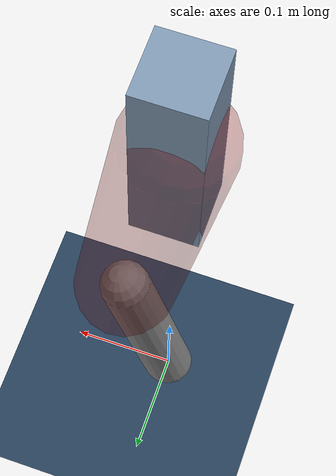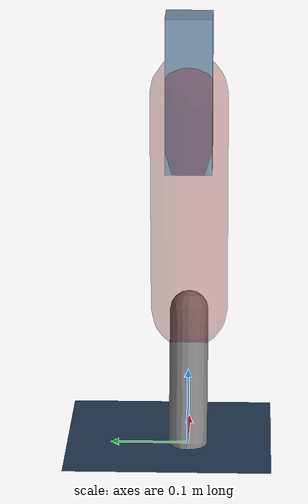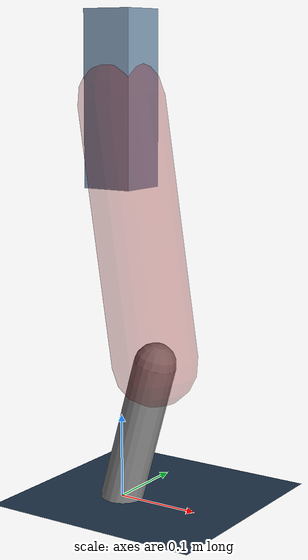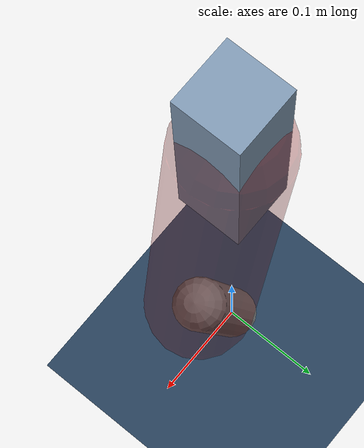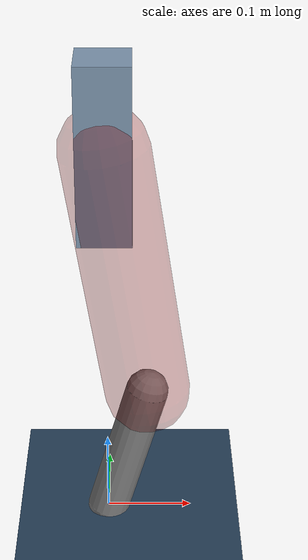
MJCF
<mujoco model="Hopper2D">
	<compiler inertiafromgeom="true" angle="radian" />
	<option timestep="0.001" integrator="implicit" cone="elliptic" solver="Newton" tolerance="1e-10" />

	<default>
		<geom contype="1" conaffinity="1" condim="3" friction="2 0.005 0.0001" solref="0.005 1" />
		<joint limited="true" damping="0.1" />
	</default>

	<asset>
		<texture name="skybox" type="skybox" builtin="gradient" rgb1=".4 .6 .8" rgb2="0 0 0" width="800" height="800" />
		<texture name="grid" type="2d" builtin="checker" rgb1=".1 .2 .3" rgb2=".2 .3 .4" width="300" height="300" mark="edge" markrgb=".2 .3 .4" />
		<material name="ground" texture="grid" texrepeat="1 1" texuniform="true" reflectance="0.1" />
		<material name="leg" rgba="0.5 0.6 0.7 1" />
	</asset>

	<worldbody>

		<geom name="floor" type="plane" size="5 5 0.25" material="ground" />

		<light directional="false" diffuse="0.8 0.8 0.8" specular="0.3 0.3 0.3" pos="0 0 2" dir="0 0 -1" />
		<light mode="targetbodycom" target="base" directional="false" diffuse="0.8 0.8 0.8" specular="0.3 0.3 0.3" pos="0 0 2" dir="0 0 -1" />

		<camera name="fixed" pos="0 -2 1" xyaxes="1 0 0 0 0 1" />
		<camera name="tracking" mode="trackcom" pos="0 -3 1" />

		<body name="root" pos="0 0 0.46974406510662536">
			<joint name="slide_x" type="slide" axis="1 0 0" range="-100 100" />
			<joint name="slide_z" type="slide" axis="0 0 1" range="0 10" />

			<body name="base" pos="0 0 0">
				<geom name="torso" type="box" size="0.03 0.03 0.1" mass="2.204" material="leg" />

				<body name="link1" pos="0 0 0" euler="0 1.4168636311595468 0">
					<joint type="hinge" axis="0 -1 0" pos="0 0 0" name="hinge1" limited="true" range="-3.14 3.14" stiffness="0" damping="0.1" />
					<geom name="thigh" type="capsule" fromto="0 0 0 0.30521574484440195 0 0" size="0.05" rgba="0.5 0 0 0.3" mass="1.0028825110798851" />

					<body name="link2" pos="0.30521574484440195 0 0" euler="0 0.4253905414263509 0">
						<joint type="hinge" axis="0 -1 0" pos="0 0 0" name="hinge2" limited="true" range="-3.14 3.14" stiffness="0" damping="0.1" />
						<geom name="shank" type="capsule" fromto="0 0 0 0.17452832026222345 0 0" size="0.025" mass="0.3791754882360011" />

					</body>
				</body>
			</body>
		</body>
	</worldbody>

	<actuator>
		<motor name="torque1" joint="hinge1" ctrlrange="-57.25841566182643 57.25841566182643" ctrllimited="true" gear="1" />
		<motor name="torque2" joint="hinge2" ctrlrange="-84.44117217923197 84.44117217923197" ctrllimited="true" gear="1" />
	</actuator>
</mujoco>
